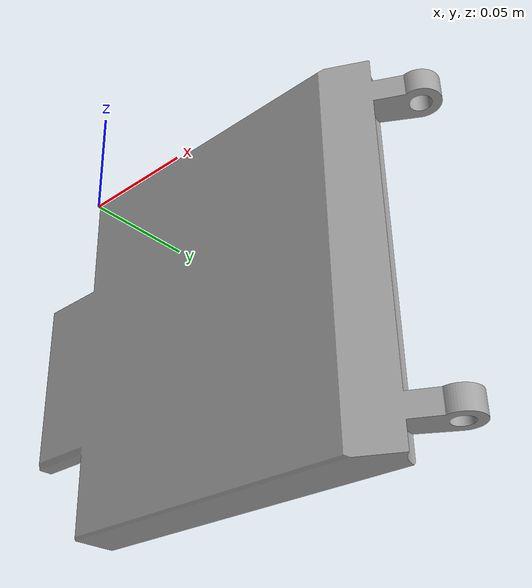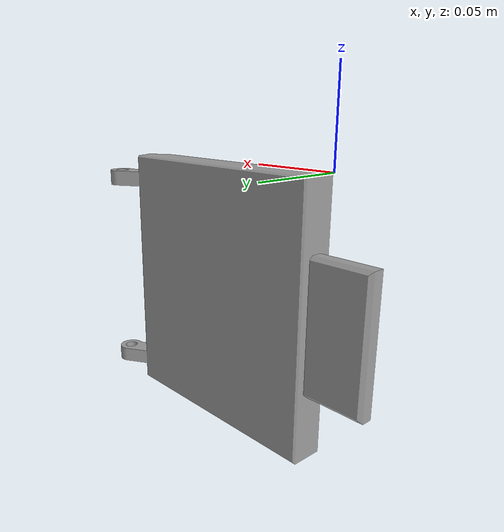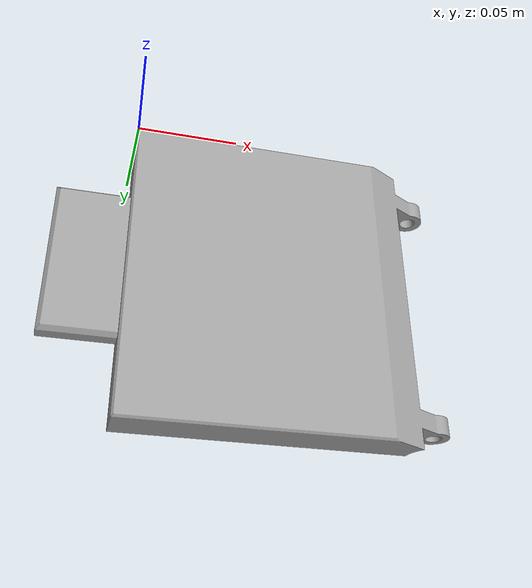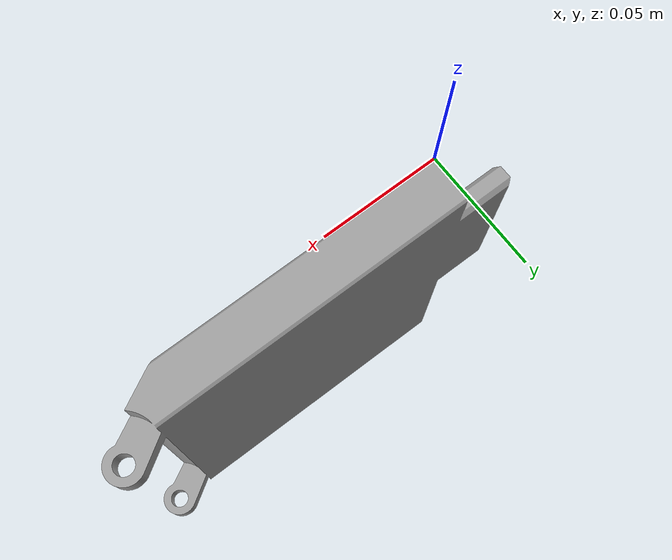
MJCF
<mujoco model="f2_block_1">
  <default>
    <default class="visual">
      <geom group="2" type="mesh" contype="0" conaffinity="0"/>
    </default>
    <default class="collision">
      <geom group="3" type="mesh"/>
    </default>
  </default>
  <asset>
    <material name="Steel_-_Satin" specular="0.5" shininess="0.5" rgba="0.627451 0.627451 0.627451 1.0"/>
    <mesh file="f2_block_1.obj"/>
    <mesh file="f2_block_1_collision_0.obj"/>
    <mesh file="f2_block_1_collision_1.obj"/>
    <mesh file="f2_block_1_collision_2.obj"/>
    <mesh file="f2_block_1_collision_3.obj"/>
    <mesh file="f2_block_1_collision_4.obj"/>
    <mesh file="f2_block_1_collision_5.obj"/>
    <mesh file="f2_block_1_collision_6.obj"/>
  </asset>
  <worldbody>
    <body name="f2_block_1">
      <geom material="Steel_-_Satin" mesh="f2_block_1" class="visual"/>
      <geom mesh="f2_block_1_collision_0" rgba="0.18076945838831482 0.19889101927907116 0.8724239034434478 1" class="collision"/>
      <geom mesh="f2_block_1_collision_1" rgba="0.8349444943689354 0.6761946945189133 0.33010370045568516 1" class="collision"/>
      <geom mesh="f2_block_1_collision_2" rgba="0.8938555477495602 0.370864054702849 0.04724099909715218 1" class="collision"/>
      <geom mesh="f2_block_1_collision_3" rgba="0.3162295518708149 0.43406955044978357 0.9791849935326291 1" class="collision"/>
      <geom mesh="f2_block_1_collision_4" rgba="0.99271047162903 0.9285073596818263 0.12479439747228471 1" class="collision"/>
      <geom mesh="f2_block_1_collision_5" rgba="0.05935130030960267 0.7529771890764725 0.22837089692494694 1" class="collision"/>
      <geom mesh="f2_block_1_collision_6" rgba="0.5246572492242306 0.03168377816698431 0.9426439340006577 1" class="collision"/>
    </body>
  </worldbody>
</mujoco>
